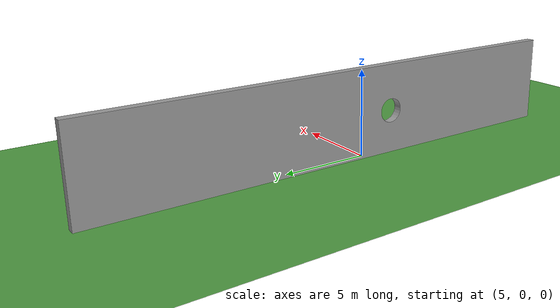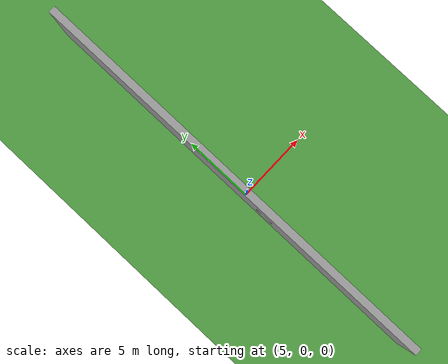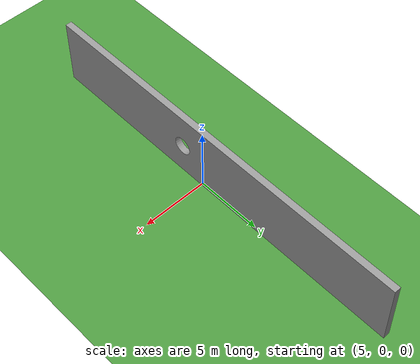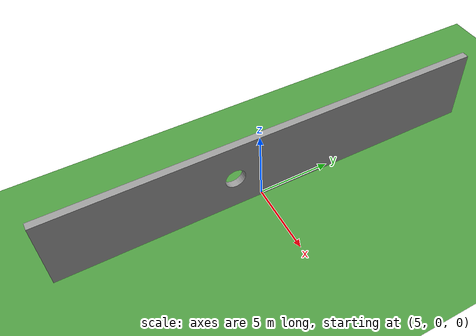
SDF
<sdf version="1.7">
 <world name="default">
  <spherical_coordinates>
   <surface_model>EARTH_WGS84</surface_model>
   <latitude_deg>47.3977</latitude_deg>
   <longitude_deg>8.54559</longitude_deg>
   <elevation>0</elevation>
   <heading_deg>0</heading_deg>
  </spherical_coordinates>
  <physics name="default_physics" default="0" type="ode">
   <ode>
    <solver>
     <type>quick</type>
     <iters>50</iters>
     <sor>1.3</sor>
     <use_dynamic_moi_rescaling>0</use_dynamic_moi_rescaling>
    </solver>
    <constraints>
     <cfm>0</cfm>
     <erp>0.2</erp>
     <contact_max_correcting_vel>100</contact_max_correcting_vel>
     <contact_surface_layer>0.001</contact_surface_layer>
    </constraints>
   </ode>
   <max_step_size>0.001</max_step_size>
   <real_time_factor>1</real_time_factor>
   <real_time_update_rate>1000</real_time_update_rate>
  </physics>
  <scene><shadows>0</shadows><ambient>0.4 0.4 0.4 1</ambient><background>0.7 0.7 0.7 1</background></scene>
  <light name="sun" type="directional">
   <pose>250 250 600 0 -0 0</pose>
   <diffuse>0.8 0.8 0.8 1</diffuse>
   <specular>0.2 0.2 0.2 1</specular>
   <attenuation>
    <range>1000</range>
    <constant>0.9</constant>
    <linear>0.01</linear>
    <quadratic>0.001</quadratic>
   </attenuation>
   <direction>0 0 -1</direction>
   <spot><inner_angle>0</inner_angle><outer_angle>0</outer_angle><falloff>0</falloff></spot>
  </light>
  <model name="ground_plane">
   <static>1</static>
   <link name="link">
    <collision name="collision">
     <geometry><plane><normal>0 0 1</normal><size>250 250</size></plane></geometry>
     <surface><friction><ode><mu>1</mu><mu2>1</mu2></ode></friction></surface>
    </collision>
    <visual name="visual">
     <cast_shadows>0</cast_shadows>
     <geometry><plane><normal>0 0 1</normal><size>250 250</size></plane></geometry>
     <material>
      <script><name>Gazebo/Grass</name><uri>file://media/materials/scripts/gazebo.material</uri></script>
     </material>
    </visual>
   </link>
  </model>
  <gravity>0 0 -9.8066</gravity>
  <magnetic_field>6e-06 2.3e-05 -4.2e-05</magnetic_field>
  <atmosphere type="adiabatic"/>
  <audio><device>default</device></audio>
  <model name="wall_with_hole">
   <static>1</static>
   <link name="link">
    <collision name="collision">
     <geometry>
      <mesh><uri>model://wall_with_hole/meshes/wall_with_hole.stl</uri><scale>0.001 0.001 0.001</scale></mesh>
     </geometry>
     <surface>
      <contact><ode><kp>100000</kp><kd>100</kd><max_vel>0.01</max_vel><min_depth>0.001</min_depth></ode></contact>
      <friction><ode><mu>0.8</mu><mu2>0.8</mu2></ode></friction>
     </surface>
    </collision>
    <visual name="visual">
     <geometry>
      <mesh><uri>model://wall_with_hole/meshes/wall_with_hole.stl</uri><scale>0.001 0.001 0.001</scale></mesh>
     </geometry>
     <material>
      <script><uri>file://media/materials/scripts/gazebo.material</uri><name>Gazebo/Grey</name></script>
     </material>
    </visual>
   </link>
   <pose>4.62377 -1.82603 2.45742 1.57 -0 1.57</pose>
  </model>
 </world>
</sdf>
